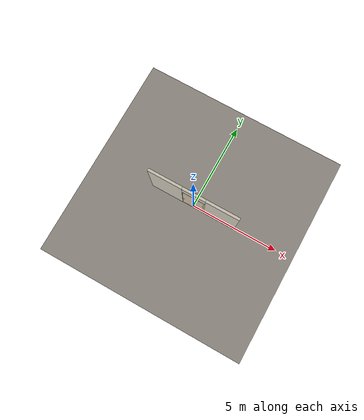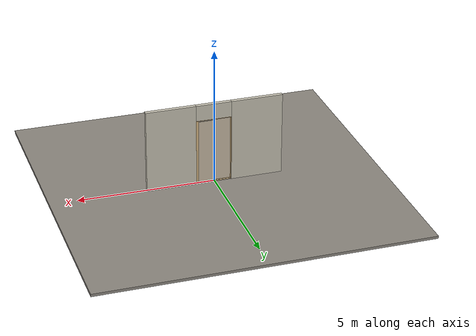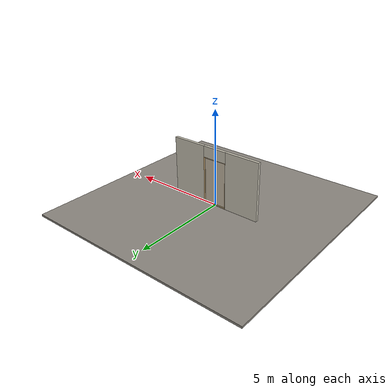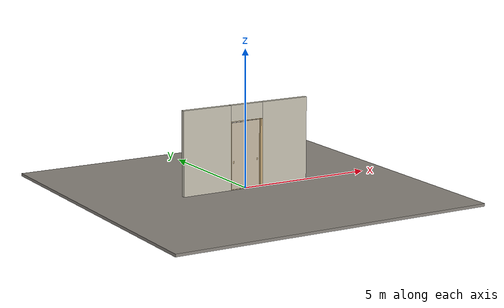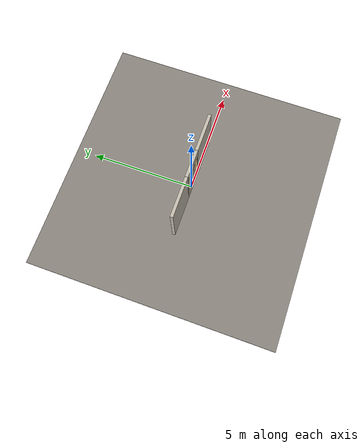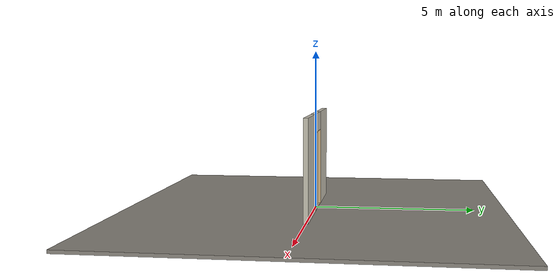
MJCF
<?xml version="1.0" ?>
<mujoco model="db0046_sliding_bypass_minimal">
  <compiler angle="radian" meshdir="../../hardware" texturedir="../../textures" autolimits="true" inertiafromgeom="false"/>
  <option timestep="0.002" integrator="implicitfast" cone="elliptic" impratio="10" noslip_iterations="3">
    <flag multiccd="enable"/>
  </option>
  <size memory="16M"/>
  <default>
    <geom condim="4" solref="0.005 1" solimp="0.95 0.99 0.001"/>
    <joint solreflimit="0.005 1" solimplimit="0.95 0.99 0.001"/>
    <tendon solreflimit="0.005 1"/>
    <equality solref="0.002 1"/>
  </default>
  <visual>
    <headlight ambient="0.4 0.4 0.4" diffuse="0.7 0.7 0.7" specular="0.2 0.2 0.2"/>
    <quality shadowsize="4096"/>
    <map znear="0.01" zfar="60"/>
  </visual>
  <asset>
    <material name="mat_floor" rgba="0.55 0.53 0.5 1" specular="0.2" shininess="0.15" reflectance="0"/>
    <material name="mat_wall" rgba="0.78 0.76 0.7 1" specular="0.2" shininess="0.1" reflectance="0"/>
    <material name="mat_frame" rgba="0.82 0.7 0.5 1" specular="0.2" shininess="0.45" reflectance="0"/>
    <material name="mat_track" rgba="0.8 0.81 0.83 1" specular="0.8" shininess="0.6" reflectance="0.4"/>
    <material name="mat_shikii" rgba="0.88 0.78 0.6 1" specular="0.2" shininess="0.4" reflectance="0"/>
    <material name="mat_leaf_0" rgba="0.777 0.724 0.643 1" specular="0.2" shininess="0.1" reflectance="0"/>
    <material name="mat_kumiko" rgba="0.88 0.78 0.6 1" specular="0.2" shininess="0.4" reflectance="0"/>
    <material name="mat_roller" rgba="0.65 0.66 0.68 1" specular="0.74" shininess="0.5" reflectance="0.36"/>
    <material name="mat_op_hinoki" rgba="0.88 0.78 0.6 1" specular="0.2" shininess="0.4" reflectance="0"/>
    <material name="mat_leaf_1" rgba="0.777 0.724 0.643 1" specular="0.2" shininess="0.1" reflectance="0"/>
    <material name="mat_hook" rgba="0.75 0.76 0.77 1" specular="0.8" shininess="0.65" reflectance="0.4"/>
    <texture name="skybox" type="skybox" builtin="gradient" rgb1="0.6 0.7 0.85" rgb2="0.9 0.92 0.95" width="256" height="256"/>
  </asset>
  <worldbody>
    <light name="sun" pos="1.5 -2.5 4" dir="-0.3 0.5 -0.8" directional="true" diffuse="0.8 0.8 0.8" specular="0.3 0.3 0.3" castshadow="true"/>
    <light name="fill" pos="-1.5 2.5 3" dir="0.3 -0.5 -0.7" directional="true" diffuse="0.35 0.35 0.4" castshadow="false"/>
    <camera name="robot_view" pos="0 -2.93125 2.05075" xyaxes="1 0 0 0 0.26963 0.962964" fovy="52"/>
    <camera name="far_view" pos="0 2.93125 2.05075" xyaxes="-1 0 0 0 -0.26963 0.962964" fovy="52"/>
    <camera name="iso" pos="2.22775 -2.46225 2.51975" xyaxes="0.741536 0.670913 0 -0.242917 0.268487 0.932151" fovy="46"/>
    <camera name="detail_handle" pos="-0.327 -0.855 1.28" xyaxes="0.97561 0.219512 0 -0.070934 0.315262 0.94635" fovy="38"/>
    <geom name="floor" type="box" size="6 6 0.05" pos="0 0 -0.05" material="mat_floor" group="0" contype="1" conaffinity="1" friction="0.8 0.005 0.0001" density="2400"/>
    <geom name="wall_left" type="box" size="0.9405 0.0725 1.53" pos="-1.5595 0 1.53" material="mat_wall" group="0" contype="1" conaffinity="1" friction="0.6 0.005 0.0001" density="800"/>
    <geom name="wall_right" type="box" size="0.9105 0.0725 1.53" pos="1.5895 0 1.53" material="mat_wall" group="0" contype="1" conaffinity="1" friction="0.6 0.005 0.0001" density="800"/>
    <geom name="wall_header" type="box" size="0.649 0.0725 0.2905" pos="0.03 0 2.7695" material="mat_wall" group="0" contype="1" conaffinity="1" friction="0.6 0.005 0.0001" density="800"/>
    <geom name="jamb_l" type="box" size="0.0095 0.0725 1.23" pos="-0.6095 0 1.23" material="mat_frame" group="0" contype="1" conaffinity="1" friction="0.6 0.005 0.0001" density="300"/>
    <geom name="jamb_head" type="box" size="0.619 0.0725 0.0095" pos="0 0 2.4695" material="mat_frame" group="0" contype="1" conaffinity="1" friction="0.6 0.005 0.0001" density="300"/>
    <geom name="leaf_0_shikii" type="box" size="0.645 0.025 0.012" pos="-0.002 -0.04 0.012" material="mat_shikii" group="0" contype="1" conaffinity="1" friction="0.6 0.005 0.0001" density="2700"/>
    <geom name="leaf_0_kamoi" type="box" size="0.645 0.025 0.03" pos="-0.002 -0.04 2.49" material="mat_shikii" group="0" contype="1" conaffinity="1" friction="0.6 0.005 0.0001" density="410"/>
    <geom name="leaf_1_shikii" type="box" size="0.645 0.025 0.012" pos="0.002 0.04 0.012" material="mat_shikii" group="0" contype="1" conaffinity="1" friction="0.6 0.005 0.0001" density="2700"/>
    <geom name="leaf_1_kamoi" type="box" size="0.645 0.025 0.03" pos="0.002 0.04 2.49" material="mat_shikii" group="0" contype="1" conaffinity="1" friction="0.6 0.005 0.0001" density="410"/>
    <geom name="jamb_latch_0" type="box" size="0.0395 0.0725 1.23" pos="0.6395 0 1.23" material="mat_frame" group="0" contype="1" conaffinity="1" friction="0.6 0.005 0.0001" density="300"/>
    <site name="approach_point" pos="0 -1.5 0" quat="1 0 0 0" size="0.05" rgba="0.2 0.9 0.2 0.5" group="4"/>
    <site name="goal_point" pos="0 1.5 0" quat="1 0 0 0" size="0.05" rgba="0.2 0.9 0.2 0.5" group="4"/>
    <site name="door_plane_center" pos="0 0 1.23" quat="1 0 0 0" size="0.02" rgba="0.2 0.9 0.2 0.5" group="4"/>
    <body name="leaf_0" pos="-0.292 -0.04 0">
      <inertial pos="-0.000073 -0.000005 1.226922" mass="7.229592" quat="0.500018 -0.500001 -0.500001 -0.499981" diaginertia="0.224757927 3.469690478 3.693363151"/>
      <joint name="leaf_0_slide" type="slide" axis="1 0 0" limited="true" range="0 0.564" damping="2.36223" frictionloss="27.707619" armature="0.5"/>
      <geom name="leaf_0_slab" type="box" size="0.305 0.015 1.2" pos="0 0 1.227" material="mat_leaf_0" group="0" contype="1" conaffinity="1" friction="0.3 0.005 0.0001" density="1"/>
      <geom name="leaf_0_pull_n" type="box" size="0.015 0.0005 0.04" pos="-0.215 -0.0155 1" material="mat_op_hinoki" group="1" contype="0" conaffinity="0" density="1000"/>
      <site name="leaf_0_pull_grip_n" pos="-0.215 -0.015 1" quat="1 0 0 0" size="0.012" rgba="0.2 0.9 0.2 0.5" group="4"/>
      <site name="leaf_0_edge_mid" pos="-0.305 0 1.227" quat="1 0 0 0" size="0.02" rgba="0.2 0.9 0.2 0.5" group="4"/>
    </body>
    <body name="leaf_1" pos="0.292 0.04 0">
      <inertial pos="0.000073 -0.000005 1.226922" mass="7.229592" quat="-0.499981 0.500001 0.500001 0.500018" diaginertia="0.224757927 3.469690478 3.693363151"/>
      <joint name="leaf_1_slide" type="slide" axis="-1 0 0" limited="true" range="0 0.564" damping="2.36223" frictionloss="27.707619" armature="0.5"/>
      <geom name="leaf_1_slab" type="box" size="0.305 0.015 1.2" pos="0 0 1.227" material="mat_leaf_1" group="0" contype="1" conaffinity="1" friction="0.3 0.005 0.0001" density="1"/>
      <geom name="leaf_1_pull_n" type="box" size="0.015 0.0005 0.04" pos="0.215 -0.0155 1" material="mat_op_hinoki" group="1" contype="0" conaffinity="0" density="1000"/>
      <site name="leaf_1_pull_grip_n" pos="0.215 -0.015 1" quat="1 0 0 0" size="0.012" rgba="0.2 0.9 0.2 0.5" group="4"/>
      <site name="leaf_1_edge_mid" pos="0.305 0 1.227" quat="1 0 0 0" size="0.02" rgba="0.2 0.9 0.2 0.5" group="4"/>
    </body>
  </worldbody>
  <sensor>
    <jointpos name="leaf_0_slide_pos" joint="leaf_0_slide"/>
    <jointvel name="leaf_0_slide_vel" joint="leaf_0_slide"/>
    <jointpos name="leaf_1_slide_pos" joint="leaf_1_slide"/>
    <jointvel name="leaf_1_slide_vel" joint="leaf_1_slide"/>
  </sensor>
</mujoco>
